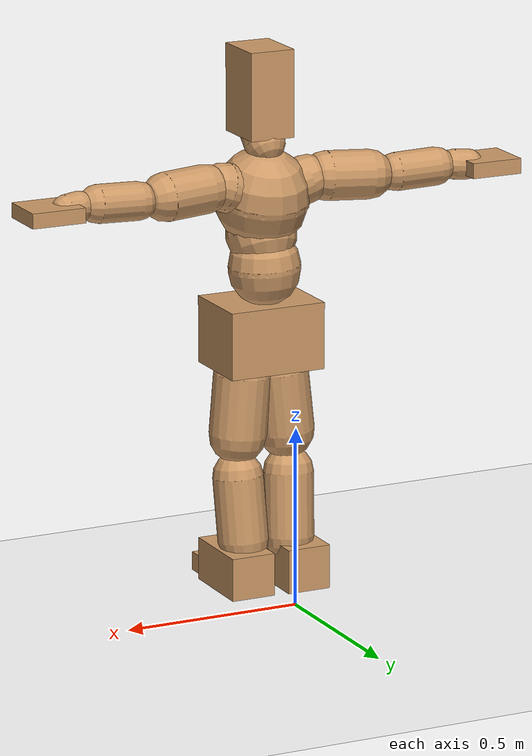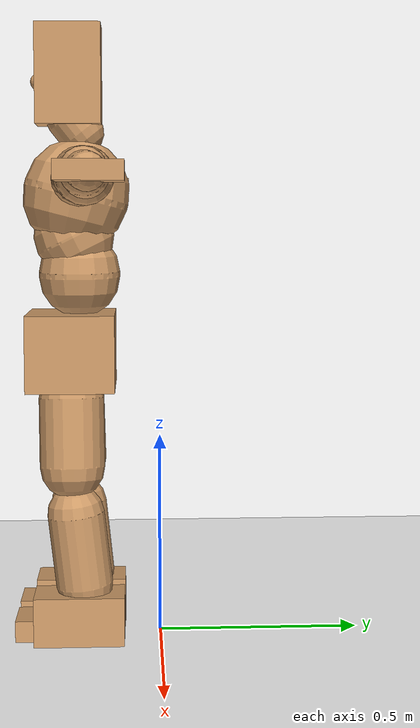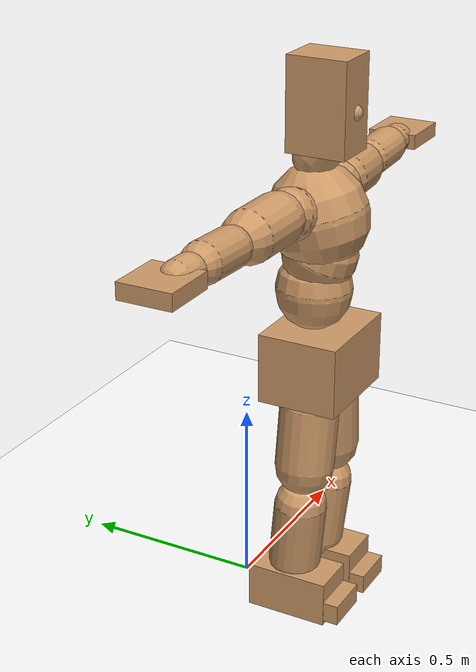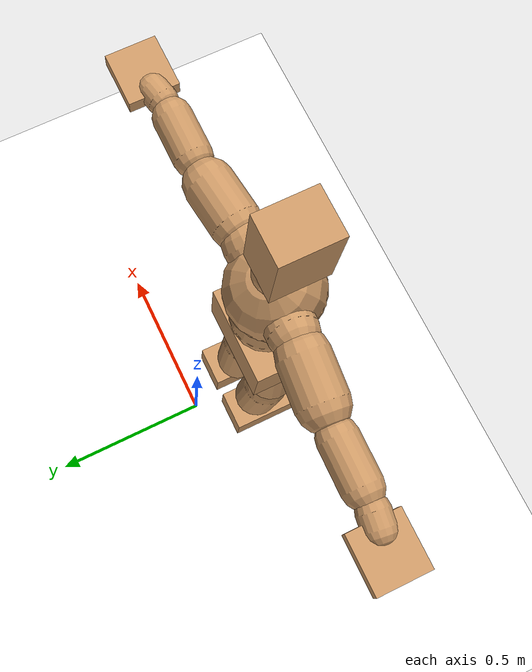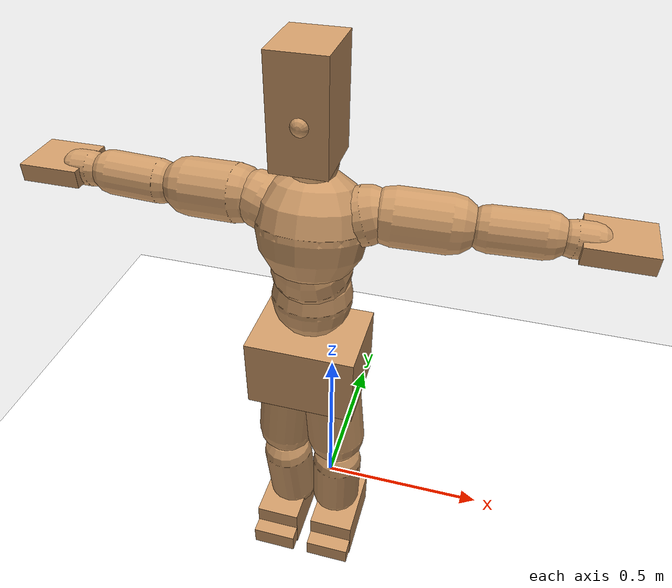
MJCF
<mujoco model="humanoid">
  <option integrator="implicitfast" />

  <visual>
    <global offwidth="1280" offheight="960" />
    <headlight active="1" ambient="0.34 0.34 0.34" diffuse="0.5 0.5 0.5" />
  </visual>

  <default>
    <joint damping="2" stiffness="2" armature="0.01" limited="true" solimplimit="0 .99 .01" />
    <geom condim="1" friction="0.7 0.005 0.0001" solimp=".99 .99 .003" solref="0.015 1" margin="0.001" rgba="0.8 0.6 .4 1" />
    <default class="smplcontact">
      <geom condim="3" friction="1. 0.005 0.0001" solref="0.015 1" solimp="0.98 0.98 0.001" priority="1" />
    </default>
    <default class="stiff_medium">
      <joint stiffness="10" />
    </default>
    <default class="stiff_medium_higher">
      <joint stiffness="50" />
    </default>
    <default class="stiff_high">
      <joint stiffness="100" />
    </default>
  </default>

  <asset>
    <texture type="skybox" builtin="gradient" rgb1="0.99 0.99 0.99" rgb2="0.608 0.828 0.892" width="100" />
    <texture builtin="flat" height="1278" mark="cross" markrgb="1 1 1" name="texgeom" random="0.01" rgb1="0.8 0.6 0.4" rgb2="0.8 0.6 0.4" type="cube" width="127" />
    <texture name="texplane" type="2d" builtin="checker" markrgb="1 1 1" rgb1="0.756 0.772 0.76" rgb2="0.6 0.6 0.6" width="100" height="100" />
    <material name="MatPlane" reflectance="0.5" texture="texplane" texrepeat="1 1" texuniform="true" />
    <material name="geom" texture="texgeom" texuniform="true" />
  </asset>

  <worldbody>
    <light name="tracking_light" pos="0 0 7" dir="0 0 -1" directional="true" cutoff="100" exponent="1" diffuse="1 1 1" specular="0.1 0.1 0.1" mode="trackcom" />
    <camera name="back" pos="0 3 2.4" xyaxes="-1 0 0 0 -1 2" mode="trackcom" />
    <camera name="side" pos="-3 0 2.4" xyaxes="0 -1 0 1 0 2" mode="trackcom" />
    <camera name="front_side" pos="-2.8 -2.8 0.8" xyaxes="0.5 -0.5 0 0.1 0.1 1" mode="trackcom" />
    <geom condim="3" name="floor" pos="0 0 0" rgba="1 1 1 1" size="100 100 .2" type="plane" material="MatPlane" />
    <body name="Pelvis" pos="-0.0018 -0.2233 0.728815" euler="90 0 0">
      <site name="Pelvis" size="0.01" />
      <freejoint name="Pelvis" />
      <geom type="box" pos="-0.0000 -0.0121 -0.0055" size="0.13897 0.09386 0.1079" quat="1.0000 0.0000 0.0000 0.0000" density="3165.830099" name="Pelvis" />
      <body name="L_Hip" pos="0.052125 -0.06855 -0.0051">
        <joint name="L_Hip_x" type="hinge" pos="0 0 0" axis="1 0 0" stiffness="11.858263488372094" range="-160.0 22.92" class="stiff_medium" damping="16.068092958494244" armature="0.009676650532478629"/>
        <joint name="L_Hip_y" type="hinge" pos="0 0 0" axis="0 1 0" stiffness="11.964359767441861" range="-70.0 70.0" class="stiff_medium" damping="15.435012586422062" armature="0.01991244146563692"/>
        <joint name="L_Hip_z" type="hinge" pos="0 0 0" axis="0 0 1" stiffness="11.93226011627907" range="-28.65 90.0" class="stiff_medium" damping="10.736151043294488" armature="0.00965994188034658"/>
        <geom type="capsule" density="2040.816327" fromto="0.005175 -0.05625 -0.000675 0.02055 -0.22515 -0.0027" size="0.07995" name="L_Hip" />
        <body name="L_Knee" pos="0.025725 -0.2814 -0.003375">
          <joint name="L_Knee_x" type="hinge" pos="0 0 0" axis="1 0 0" range="-5.16 171.89" damping="9.377427020673869" armature="0.010837409497361353" stiffness="2.535665279069767"/>
          <joint name="L_Knee_y" type="hinge" pos="0 0 0" axis="0 1 0" range="-4.58 6.88" damping="13.122235236560275" armature="0.022138456818400876" stiffness="2.4306269828349945"/>
          <joint name="L_Knee_z" type="hinge" pos="0 0 0" axis="0 0 1" range="-6.88 4.58" damping="9.385014701795315" armature="0.01074658799210563" stiffness="2.561234465116279"/>
          <geom type="capsule" density="1234.567901" fromto="-0.002025 -0.0597 -0.006525 -0.008175 -0.2388 -0.02625" size="0.07033" name="L_Knee" />
          <body name="L_Ankle" pos="-0.0102 -0.2985 -0.032775">
            <joint name="L_Ankle_x" type="hinge" pos="0 0 0" axis="1 0 0" range="-45.84 45.84" class="stiff_medium" damping="11.117577805797527" armature="0.02083658461335521" stiffness="16.4775"/>
            <joint name="L_Ankle_y" type="hinge" pos="0 0 0" axis="0 1 0" range="-74.48 22.92" class="stiff_medium" damping="5.639060394301202" armature="0.021442709506617735" stiffness="16.4775"/>
            <joint name="L_Ankle_z" type="hinge" pos="0 0 0" axis="0 0 1" range="-4.58 4.58" class="stiff_medium" damping="12.277381987072683" armature="0.025410763576003765" stiffness="16.4775"/>
            <geom type="box" pos="0.017475 -0.017925 0.01815" size="0.06279 0.06032 0.1105" quat="1.0000 0.0000 0.0000 0.0000" density="449.071558" name="L_Ankle" class="smplcontact" />
            <body name="L_Toe" pos="0.0198 -0.04185 0.089475">
              <joint name="L_Toe_x" type="hinge" pos="0 0 0" axis="1 0 0" range="-91.67 22.92" armature="0.0277115987131363" damping="4.273723752400024" stiffness="3.2955"/>
              <joint name="L_Toe_y" type="hinge" pos="0 0 0" axis="0 1 0" range="-4.58 4.58" armature="0.030493769146980272" damping="4.4831287339061205" stiffness="3.2955"/>
              <joint name="L_Toe_z" type="hinge" pos="0 0 0" axis="0 0 1" range="-4.58 4.58" armature="0.03611916801457241" damping="4.879153987978313" stiffness="3.2955"/>
              <geom type="box" pos="-0.00225 0.004125 0.0186" size="0.06214 0.026 0.06448" quat="1.0000 0.0000 0.0000 0.0000" density="423.206892" name="L_Toe" class="smplcontact" />
            </body>
          </body>
        </body>
      </body>
      <body name="R_Hip" pos="-0.050775 -0.067875 -0.003225">
        <joint name="R_Hip_x" type="hinge" pos="0 0 0" axis="1 0 0" stiffness="11.858263488372094" range="-160.0 22.92" class="stiff_medium" damping="16.068092958494244" armature="0.009676650532478629"/>
        <joint name="R_Hip_y" type="hinge" pos="0 0 0" axis="0 1 0" stiffness="11.964359767441861" range="-70.0 70.0" class="stiff_medium" damping="15.435012586422062" armature="0.01991244146563692"/>
        <joint name="R_Hip_z" type="hinge" pos="0 0 0" axis="0 0 1" stiffness="11.93226011627907" range="-90.0 28.65" class="stiff_medium" damping="10.736151043294488" armature="0.00965994188034658"/>
        <geom type="capsule" density="2040.816327" fromto="-0.005775 -0.057375 -0.00135 -0.02295 -0.229575 -0.005325" size="0.07878" name="R_Hip" />
        <body name="R_Knee" pos="-0.028725 -0.28695 -0.006675">
          <joint name="R_Knee_x" type="hinge" pos="0 0 0" axis="1 0 0" range="-5.16 171.89" damping="9.377427020673869" armature="0.010837409497361353" stiffness="2.535665279069767"/>
          <joint name="R_Knee_y" type="hinge" pos="0 0 0" axis="0 1 0" range="-6.88 4.58" damping="13.122235236560275" armature="0.022138456818400876" stiffness="2.4306269828349945"/>
          <joint name="R_Knee_z" type="hinge" pos="0 0 0" axis="0 0 1" range="-4.58 6.88" damping="9.385014701795315" armature="0.01074658799210563" stiffness="2.561234465116279"/>
          <geom type="capsule" density="1234.567901" fromto="0.0024 -0.059775 -0.006375 0.00945 -0.239025 -0.02535" size="0.07033" name="R_Knee" />
          <body name="R_Ankle" pos="0.01185 -0.2988 -0.031725">
            <joint name="R_Ankle_x" type="hinge" pos="0 0 0" axis="1 0 0" range="-45.84 45.84" class="stiff_medium" damping="11.117577805797527" armature="0.02083658461335521" stiffness="16.4775"/>
            <joint name="R_Ankle_y" type="hinge" pos="0 0 0" axis="0 1 0" range="-22.92 74.48" class="stiff_medium" damping="5.639060394301202" armature="0.021442709506617735" stiffness="16.4775"/>
            <joint name="R_Ankle_z" type="hinge" pos="0 0 0" axis="0 0 1" range="-4.58 4.58" class="stiff_medium" damping="12.277381987072683" armature="0.025410763576003765" stiffness="16.4775"/>
            <geom type="box" pos="-0.0159 -0.01305 0.0192" size="0.06279 0.06214 0.11245" quat="1.0000 0.0000 0.0000 0.0000" density="434.700981" name="R_Ankle" class="smplcontact" />
            <body name="R_Toe" pos="-0.01905 -0.036075 0.092475">
              <joint name="R_Toe_x" type="hinge" pos="0 0 0" axis="1 0 0" range="-91.67 22.92" armature="0.0277115987131363" damping="4.273723752400024" stiffness="3.2955"/>
              <joint name="R_Toe_y" type="hinge" pos="0 0 0" axis="0 1 0" range="-4.58 4.58" armature="0.030493769146980272" damping="4.4831287339061205" stiffness="3.2955"/>
              <joint name="R_Toe_z" type="hinge" pos="0 0 0" axis="0 0 1" range="-4.58 4.58" armature="0.03611916801457241" damping="4.879153987978313" stiffness="3.2955"/>
              <geom type="box" pos="0.00315 0.003375 0.017025" size="0.06227 0.02808 0.06409" quat="1.0000 0.0000 0.0000 0.0000" density="407.384095" name="R_Toe" class="smplcontact" />
            </body>
          </body>
        </body>
      </body>
      <body name="Torso" pos="-0.0025 0.109 -0.0267">
        <joint name="Torso_x" type="hinge" pos="0 0 0" axis="1 0 0" range="-25.78 57.3" class="stiff_medium" damping="24.077182940937746" armature="0.015427091630277667" stiffness="16.701088139534882"/>
        <joint name="Torso_y" type="hinge" pos="0 0 0" axis="0 1 0" range="-57.3 57.3" class="stiff_high" damping="28.181150474542985" armature="0.011938163823963122" stiffness="166.31059302325576"/>
        <joint name="Torso_z" type="hinge" pos="0 0 0" axis="0 0 1" range="-34.38 34.38" class="stiff_high" damping="31.169981713935183" armature="0.01398971678425612" stiffness="173.62177073170733"/>
        <geom type="capsule" density="2040.816327" fromto="0.0025 0.0608 0.0005 0.003 0.0743 0.0006" size="0.09997" name="Torso" />
        <body name="Spine" pos="0.0055 0.1352 0.0011">
          <joint name="Spine_x" type="hinge" pos="0 0 0" axis="1 0 0" stiffness="15.859604418604654" range="-25.78 57.3" class="stiff_medium" damping="22.480163250570996" armature="0.014161982478915513"/>
          <joint name="Spine_y" type="hinge" pos="0 0 0" axis="0 1 0" stiffness="16.1063919047619" range="-57.3 57.3" class="stiff_high" damping="11.020355689034874" armature="0.011781836388987514"/>
          <joint name="Spine_z" type="hinge" pos="0 0 0" axis="0 0 1" stiffness="31.235601395348837" range="-34.38 34.38" class="stiff_high" damping="16.751542242374388" armature="0.012477489847878743"/>
          <geom type="capsule" density="2040.816327" fromto="0.0007 0.0238 0.0114 0.0008 0.0291 0.014" size="0.09815" name="Spine" />
          <body name="Chest" pos="0.0015 0.0529 0.0254">
            <joint name="Chest_x" type="hinge" pos="0 0 0" axis="1 0 0" stiffness="14.40614119047619" range="-25.78 57.3" class="stiff_medium" damping="20.96059226256558" armature="0.013554294417098956"/>
            <joint name="Chest_y" type="hinge" pos="0 0 0" axis="0 1 0" stiffness="14.021498536585366" range="-57.3 57.3" class="stiff_high" damping="10.236021857533279" armature="0.011675836483627444"/>
            <joint name="Chest_z" type="hinge" pos="0 0 0" axis="0 0 1" stiffness="29.43207674418605" range="-34.38 34.38" class="stiff_high" damping="15.902606574192356" armature="0.011933922848285188"/>
            <geom type="capsule" density="2040.816327" fromto="-0.0009 0.0682 -0.0173 -0.001 0.0833 -0.0212" size="0.13026" name="Chest" />
            <body name="Neck" pos="-0.0028 0.2139 -0.0429">
              <joint name="Neck_x" type="hinge" pos="0 0 0" axis="1 0 0" range="-28.65 57.3" class="stiff_medium_higher" damping="12.068275332666797" armature="0.011999532387037562" stiffness="60.68706046511628"/>
              <joint name="Neck_y" type="hinge" pos="0 0 0" axis="0 1 0" range="-40.11 40.11" class="stiff_medium_higher" damping="12.564401524952082" armature="0.013108987956197206" stiffness="60.21219418604651"/>
              <joint name="Neck_z" type="hinge" pos="0 0 0" axis="0 0 1" range="-40.11 40.11" class="stiff_medium_higher" damping="11.90621541328846" armature="0.011964356151950873" stiffness="59.24178604651161"/>
              <geom type="capsule" density="1000" fromto="0.001 0.013 0.0103 0.0041 0.052 0.0411" size="0.05668" name="Neck" />
              <body name="Head" pos="0.0052 0.065 0.0513">
                <joint name="Head_x" type="hinge" pos="0 0 0" axis="1 0 0" range="-28.65 57.3" class="stiff_medium_higher" damping="2.3679344135453846" armature="0.01210908840698094" stiffness="57.88125000000001"/>
                <joint name="Head_y" type="hinge" pos="0 0 0" axis="0 1 0" range="-40.11 40.11" class="stiff_medium_higher" damping="2.425797531188864" armature="0.012708117184584793" stiffness="57.88125000000001"/>
                <joint name="Head_z" type="hinge" pos="0 0 0" axis="0 0 1" range="-40.11 40.11" class="stiff_medium_higher" damping="2.36503258144638" armature="0.012079427947960108" stiffness="57.88125000000001"/>
                <geom type="box" pos="-0.0042 0.0876 -0.0116" size="0.06363 0.12117 0.0798" quat="1.0000 0.0000 0.0000 0.0000" density="1018.069894" name="Head" />
                <geom type="capsule" name="nose" size="0.021 0.0105" pos="0 0.07 0.05" quat="1 0 0 0" mass="0" contype="0" conaffinity="0" />
              </body>
            </body>
            <body name="L_Thorax" pos="0.06304 0.09736 -0.02728">
              <joint name="L_Thorax_x" type="hinge" pos="0 0 0" axis="1 0 0" range="-10.89 4.58" class="stiff_medium_higher" damping="31.722986873389885" armature="0.01869047979990956" stiffness="67.30350872093025"/>
              <joint name="L_Thorax_y" type="hinge" pos="0 0 0" axis="0 1 0" range="-28.65 17.19" class="stiff_medium_higher" damping="24.382620038397633" armature="0.011190370272704402" stiffness="66.40890174418605"/>
              <joint name="L_Thorax_z" type="hinge" pos="0 0 0" axis="0 0 1" range="-31.51 40.11" class="stiff_medium_higher" damping="24.382615090488674" armature="0.0111834154133925" stiffness="66.4501738372093"/>
              <geom type="capsule" density="1000" fromto="0.01456 0.00488 -0.00144 0.05824 0.01952 -0.00568" size="0.06773" name="L_Thorax" />
              <body name="L_Shoulder" pos="0.0728 0.0244 -0.00712">
                <joint name="L_Shoulder_x" type="hinge" pos="0 0 0" axis="1 0 0" range="-97.4 97.4" class="stiff_medium" damping="10.218311024504594" armature="0.02137793338227807" stiffness="13.567193372093024"/>
                <joint name="L_Shoulder_y" type="hinge" pos="0 0 0" axis="0 1 0" range="-108.86 80.21" class="stiff_medium" damping="7.3992450494271385" armature="0.011366876866356573" stiffness="13.379231395348835"/>
                <joint name="L_Shoulder_z" type="hinge" pos="0 0 0" axis="0 0 1" range="-97.4 85.94" class="stiff_medium" damping="7.391720853808945" armature="0.011356963675091305" stiffness="13.363689534883726"/>
                <geom type="capsule" density="1000" fromto="0.04152 -0.00208 -0.0044 0.16616 -0.00816 -0.0176" size="0.06721" name="L_Shoulder" />
                <body name="L_Elbow" pos="0.20768 -0.01024 -0.022">
                  <joint name="L_Elbow_x" type="hinge" pos="0 0 0" axis="1 0 0" range="-17.19 4.58" damping="9.599235461421163" armature="0.026206277924719714" stiffness="2.8129235813953493"/>
                  <joint name="L_Elbow_y" type="hinge" pos="0 0 0" axis="0 1 0" range="-180.0 17.19" damping="6.564016926033026" armature="0.012251007778315398" stiffness="2.813568906976744"/>
                  <joint name="L_Elbow_z" type="hinge" pos="0 0 0" axis="0 0 1" range="-100.84 4.58" damping="6.551577023801565" armature="0.01219897404795812" stiffness="2.814870255813953"/>
                  <geom type="capsule" density="1000" fromto="0.03984 0.00144 -0.00016 0.15952 0.00576 -0.00072" size="0.05265" name="L_Elbow" />
                  <body name="L_Wrist" pos="0.19936 0.0072 -0.00096">
                    <joint name="L_Wrist_x" type="hinge" pos="0 0 0" axis="1 0 0" range="-180.0 22.92" armature="0.028842167844616663" damping="4.346077065496655" stiffness="3.27443934883721"/>
                    <joint name="L_Wrist_y" type="hinge" pos="0 0 0" axis="0 1 0" range="-17.19 17.19" armature="0.01612095498585496" damping="3.2281899953298483" stiffness="3.2321939534883724"/>
                    <joint name="L_Wrist_z" type="hinge" pos="0 0 0" axis="0 0 1" range="-22.92 22.92" armature="0.015379911392616803" damping="3.161088546720517" stiffness="3.2485495348837206"/>
                    <geom type="capsule" density="1000" fromto="0.01344 -0.00128 -0.0024 0.05376 -0.0052 -0.0096" size="0.04134" name="L_Wrist" class="smplcontact" />
                    <body name="L_Hand" pos="0.0672 -0.00656 -0.01192">
                      <joint name="L_Hand_x" type="hinge" pos="0 0 0" axis="1 0 0" range="-17.19 17.19" armature="0.036124294026030505" damping="5.03952613566598" stiffness="3.5151999999999997"/>
                      <joint name="L_Hand_y" type="hinge" pos="0 0 0" axis="0 1 0" range="-51.57 51.57" armature="0.024975139299557237" damping="4.190289003536716" stiffness="3.5151999999999997"/>
                      <joint name="L_Hand_z" type="hinge" pos="0 0 0" axis="0 0 1" range="-91.67 91.67" armature="0.02200317977540781" damping="3.933079646956403" stiffness="3.5151999999999997"/>
                      <geom type="box" pos="0.03944 0.0008 -0.00464" size="0.07605 0.02054 0.06994" quat="1.0000 0.0000 0.0000 0.0000" density="400.552564" name="L_Hand" class="smplcontact" />
                    </body>
                  </body>
                </body>
              </body>
            </body>
            <body name="R_Thorax" pos="-0.06544 0.09504 -0.03088">
              <joint name="R_Thorax_x" type="hinge" pos="0 0 0" axis="1 0 0" range="-10.89 4.58" class="stiff_medium_higher" damping="31.722986873389885" armature="0.01869047979990956" stiffness="67.30350872093025"/>
              <joint name="R_Thorax_y" type="hinge" pos="0 0 0" axis="0 1 0" range="-17.19 28.65" class="stiff_medium_higher" damping="24.382620038397633" armature="0.011190370272704402" stiffness="66.40890174418605"/>
              <joint name="R_Thorax_z" type="hinge" pos="0 0 0" axis="0 0 1" range="-40.11 31.51" class="stiff_medium_higher" damping="24.382615090488674" armature="0.0111834154133925" stiffness="66.4501738372093"/>
              <geom type="capsule" density="1000" fromto="-0.01536 0.0052 -0.00144 -0.06144 0.0208 -0.00584" size="0.06643" name="R_Thorax" />
              <body name="R_Shoulder" pos="-0.0768 0.02608 -0.00728">
                <joint name="R_Shoulder_x" type="hinge" pos="0 0 0" axis="1 0 0" range="-97.4 97.4" class="stiff_medium" damping="10.218311024504594" armature="0.02137793338227807" stiffness="13.567193372093024"/>
                <joint name="R_Shoulder_y" type="hinge" pos="0 0 0" axis="0 1 0" range="-80.21 108.86" class="stiff_medium" damping="7.3992450494271385" armature="0.011366876866356573" stiffness="13.379231395348835"/>
                <joint name="R_Shoulder_z" type="hinge" pos="0 0 0" axis="0 0 1" range="-85.94 97.4" class="stiff_medium" damping="7.391720853808945" armature="0.011356963675091305" stiffness="13.363689534883726"/>
                <geom type="capsule" density="1000" fromto="-0.04056 -0.00216 -0.00344 -0.1624 -0.00856 -0.01368" size="0.06903" name="R_Shoulder" />
                <body name="R_Elbow" pos="-0.20296 -0.01064 -0.01712">
                  <joint name="R_Elbow_x" type="hinge" pos="0 0 0" axis="1 0 0" range="-17.19 4.58" damping="9.599235461421163" armature="0.026206277924719714" stiffness="2.8129235813953493"/>
                  <joint name="R_Elbow_y" type="hinge" pos="0 0 0" axis="0 1 0" range="-17.19 180.0" damping="6.564016926033026" armature="0.012251007778315398" stiffness="2.813568906976744"/>
                  <joint name="R_Elbow_z" type="hinge" pos="0 0 0" axis="0 0 1" range="-4.58 100.84" damping="6.551577023801565" armature="0.01219897404795812" stiffness="2.814870255813953"/>
                  <geom type="capsule" density="1000" fromto="-0.04088 0.00128 -0.00088 -0.16336 0.00496 -0.00352" size="0.05304" name="R_Elbow" />
                  <body name="R_Wrist" pos="-0.20424 0.00624 -0.00448">
                    <joint name="R_Wrist_x" type="hinge" pos="0 0 0" axis="1 0 0" range="-180.0 22.92" armature="0.028842167844616663" damping="4.346077065496655" stiffness="3.27443934883721"/>
                    <joint name="R_Wrist_y" type="hinge" pos="0 0 0" axis="0 1 0" range="-17.19 17.19" armature="0.01612095498585496" damping="3.2281899953298483" stiffness="3.2321939534883724"/>
                    <joint name="R_Wrist_z" type="hinge" pos="0 0 0" axis="0 0 1" range="-22.92 22.92" armature="0.015379911392616803" damping="3.161088546720517" stiffness="3.2485495348837206"/>
                    <geom type="capsule" density="1000" fromto="-0.01352 -0.00096 -0.00168 -0.05416 -0.00392 -0.00664" size="0.04238" name="R_Wrist" class="smplcontact" />
                    <body name="R_Hand" pos="-0.06768 -0.00488 -0.00824">
                      <joint name="R_Hand_x" type="hinge" pos="0 0 0" axis="1 0 0" range="-17.19 17.19" armature="0.036124294026030505" damping="5.03952613566598" stiffness="3.5151999999999997"/>
                      <joint name="R_Hand_y" type="hinge" pos="0 0 0" axis="0 1 0" range="-51.57 51.57" armature="0.024975139299557237" damping="4.190289003536716" stiffness="3.5151999999999997"/>
                      <joint name="R_Hand_z" type="hinge" pos="0 0 0" axis="0 0 1" range="-91.67 91.67" armature="0.02200317977540781" damping="3.933079646956403" stiffness="3.5151999999999997"/>
                      <geom type="box" pos="-0.03696 -0.00072 -0.00632" size="0.07397 0.02132 0.07098" quat="1.0000 0.0000 0.0000 0.0000" density="403.679611" name="R_Hand" class="smplcontact" />
                    </body>
                  </body>
                </body>
              </body>
            </body>
          </body>
        </body>
      </body>
    </body>
  </worldbody>
  <actuator>
    <general name="L_Hip_x" joint="L_Hip_x" biastype="affine" gainprm="340.7235608196892" biasprm="-255.3377745307402 -213.44874279069768 -2.1424123944658993" ctrllimited="true" ctrlrange="-1 1" forcerange="-426.89748558139536 426.89748558139536" />
    <general name="L_Hip_y" joint="L_Hip_y" biastype="affine" gainprm="263.11001325210447" biasprm="0.0 -215.3584758139535 -3.087002517284412" ctrllimited="true" ctrlrange="-1 1" forcerange="-430.716951627907 430.716951627907" />
    <general name="L_Hip_z" joint="L_Hip_z" biastype="affine" gainprm="222.38747903341223" biasprm="114.98922746481112 -214.78068209302324 -2.1472302086588977" ctrllimited="true" ctrlrange="-1 1" forcerange="-429.5613641860465 429.5613641860465" />
    <general name="L_Knee_x" joint="L_Knee_x" biastype="affine" gainprm="352.5962883541156" biasprm="332.04393762937974 -228.20987511627905 -2.344356755168467" ctrllimited="true" ctrlrange="-1 1" forcerange="-456.4197502325581 456.4197502325581" />
    <general name="L_Knee_y" joint="L_Knee_y" biastype="affine" gainprm="21.87725423583427" biasprm="4.390722926912637 -218.7564284551495 -3.280558809140069" ctrllimited="true" ctrlrange="-1 1" forcerange="-437.512856910299 437.512856910299" />
    <general name="L_Knee_z" joint="L_Knee_z" biastype="affine" gainprm="23.052808162927267" biasprm="-4.6266543433449145 -230.51110186046512 -2.346253675448829" ctrllimited="true" ctrlrange="-1 1" forcerange="-461.02220372093024 461.02220372093024" />
    <general name="L_Ankle_x" joint="L_Ankle_x" biastype="affine" gainprm="118.6467390403132" biasprm="0.0 -148.2975 -3.7058592685991756" ctrllimited="true" ctrlrange="-1 1" forcerange="-296.595 296.595" />
    <general name="L_Ankle_y" joint="L_Ankle_y" biastype="affine" gainprm="126.04921883209539" biasprm="-66.72584931193879 -148.2975 -3.7593735962008017" ctrllimited="true" ctrlrange="-1 1" forcerange="-296.595 296.595" />
    <general name="L_Ankle_z" joint="L_Ankle_z" biastype="affine" gainprm="11.854320785441411" biasprm="0.0 -148.2975 -4.092460662357561" ctrllimited="true" ctrlrange="-1 1" forcerange="-296.595 296.595" />
    <general name="L_Toe_x" joint="L_Toe_x" biastype="affine" gainprm="118.63638592172326" biasprm="-71.17769030559799 -118.638 -1.7094895009600095" ctrllimited="true" ctrlrange="-1 1" forcerange="-237.276 237.276" />
    <general name="L_Toe_y" joint="L_Toe_y" biastype="affine" gainprm="9.48345662835313" biasprm="0.0 -118.638 -1.7932514935624484" ctrllimited="true" ctrlrange="-1 1" forcerange="-237.276 237.276" />
    <general name="L_Toe_z" joint="L_Toe_z" biastype="affine" gainprm="9.48345662835313" biasprm="0.0 -118.638 -1.9516615951913252" ctrllimited="true" ctrlrange="-1 1" forcerange="-237.276 237.276" />
    <general name="R_Hip_x" joint="R_Hip_x" biastype="affine" gainprm="340.7235608196892" biasprm="-255.3377745307402 -213.44874279069768 -2.1424123944658993" ctrllimited="true" ctrlrange="-1 1" forcerange="-426.89748558139536 426.89748558139536" />
    <general name="R_Hip_y" joint="R_Hip_y" biastype="affine" gainprm="263.11001325210447" biasprm="0.0 -215.3584758139535 -3.087002517284412" ctrllimited="true" ctrlrange="-1 1" forcerange="-430.716951627907 430.716951627907" />
    <general name="R_Hip_z" joint="R_Hip_z" biastype="affine" gainprm="222.38747903341223" biasprm="-114.98922746481112 -214.78068209302324 -2.1472302086588977" ctrllimited="true" ctrlrange="-1 1" forcerange="-429.5613641860465 429.5613641860465" />
    <general name="R_Knee_x" joint="R_Knee_x" biastype="affine" gainprm="352.5962883541156" biasprm="332.04393762937974 -228.20987511627905 -2.344356755168467" ctrllimited="true" ctrlrange="-1 1" forcerange="-456.4197502325581 456.4197502325581" />
    <general name="R_Knee_y" joint="R_Knee_y" biastype="affine" gainprm="21.87725423583427" biasprm="-4.390722926912637 -218.7564284551495 -3.280558809140069" ctrllimited="true" ctrlrange="-1 1" forcerange="-437.512856910299 437.512856910299" />
    <general name="R_Knee_z" joint="R_Knee_z" biastype="affine" gainprm="23.052808162927267" biasprm="4.6266543433449145 -230.51110186046512 -2.346253675448829" ctrllimited="true" ctrlrange="-1 1" forcerange="-461.02220372093024 461.02220372093024" />
    <general name="R_Ankle_x" joint="R_Ankle_x" biastype="affine" gainprm="118.6467390403132" biasprm="0.0 -148.2975 -3.7058592685991756" ctrllimited="true" ctrlrange="-1 1" forcerange="-296.595 296.595" />
    <general name="R_Ankle_y" joint="R_Ankle_y" biastype="affine" gainprm="126.04921883209539" biasprm="66.72584931193879 -148.2975 -3.7593735962008017" ctrllimited="true" ctrlrange="-1 1" forcerange="-296.595 296.595" />
    <general name="R_Ankle_z" joint="R_Ankle_z" biastype="affine" gainprm="11.854320785441411" biasprm="0.0 -148.2975 -4.092460662357561" ctrllimited="true" ctrlrange="-1 1" forcerange="-296.595 296.595" />
    <general name="R_Toe_x" joint="R_Toe_x" biastype="affine" gainprm="118.63638592172326" biasprm="-71.17769030559799 -118.638 -1.7094895009600095" ctrllimited="true" ctrlrange="-1 1" forcerange="-237.276 237.276" />
    <general name="R_Toe_y" joint="R_Toe_y" biastype="affine" gainprm="9.48345662835313" biasprm="0.0 -118.638 -1.7932514935624484" ctrllimited="true" ctrlrange="-1 1" forcerange="-237.276 237.276" />
    <general name="R_Toe_z" joint="R_Toe_z" biastype="affine" gainprm="9.48345662835313" biasprm="0.0 -118.638 -1.9516615951913252" ctrllimited="true" ctrlrange="-1 1" forcerange="-237.276 237.276" />
    <general name="Torso_x" joint="Torso_x" biastype="affine" gainprm="290.60285021148786" biasprm="110.25279054725681 -400.8261153488372 -6.420582117583399" ctrllimited="true" ctrlrange="-1 1" forcerange="-601.2391730232558 601.2391730232558" />
    <general name="Torso_y" joint="Torso_y" biastype="affine" gainprm="399.174824863601" biasprm="0.0 -399.14542325581385 -5.636230094908597" ctrllimited="true" ctrlrange="-1 1" forcerange="-598.7181348837207 598.7181348837207" />
    <general name="Torso_z" joint="Torso_z" biastype="affine" gainprm="250.03376633253788" biasprm="0.0 -416.69224975609757 -6.233996342787036" ctrllimited="true" ctrlrange="-1 1" forcerange="-625.0383746341464 625.0383746341464" />
    <general name="Spine_x" joint="Spine_x" biastype="affine" gainprm="275.96083613038" biasprm="104.69770768933049 -380.6305060465117 -5.994710200152266" ctrllimited="true" ctrlrange="-1 1" forcerange="-570.9457590697675 570.9457590697675" />
    <general name="Spine_y" joint="Spine_y" biastype="affine" gainprm="386.58187977652307" biasprm="0.0 -386.55340571428565 -5.510177844517437" ctrllimited="true" ctrlrange="-1 1" forcerange="-579.8301085714285 579.8301085714285" />
    <general name="Spine_z" joint="Spine_z" biastype="affine" gainprm="224.91289622340742" biasprm="0.0 -374.82721674418605 -5.583847414124796" ctrllimited="true" ctrlrange="-1 1" forcerange="-562.240825116279 562.240825116279" />
    <general name="Chest_x" joint="Chest_x" biastype="affine" gainprm="250.67023510829088" biasprm="95.10262169731978 -345.74738857142853 -5.589491270017488" ctrllimited="true" ctrlrange="-1 1" forcerange="-518.6210828571428 518.6210828571428" />
    <general name="Chest_y" joint="Chest_y" biastype="affine" gainprm="336.5407531127046" biasprm="0.0 -336.5159648780488 -5.1180109287666395" ctrllimited="true" ctrlrange="-1 1" forcerange="-504.7739473170732 504.7739473170732" />
    <general name="Chest_z" joint="Chest_z" biastype="affine" gainprm="211.92656221404414" biasprm="0.0 -353.1849209302326 -5.300868858064119" ctrllimited="true" ctrlrange="-1 1" forcerange="-529.7773813953488 529.7773813953488" />
    <general name="Neck_x" joint="Neck_x" biastype="affine" gainprm="32.773426609596534" biasprm="10.924475536532176 -43.69468353488372 -0.9654620266133439" ctrllimited="true" ctrlrange="-1 1" forcerange="-87.38936706976745 87.38936706976745" />
    <general name="Neck_y" joint="Neck_y" biastype="affine" gainprm="30.34918126806594" biasprm="0.0 -43.35277981395349 -1.0051521219961665" ctrllimited="true" ctrlrange="-1 1" forcerange="-86.70555962790698 86.70555962790698" />
    <general name="Neck_z" joint="Neck_z" biastype="affine" gainprm="29.860059539006343" biasprm="0.0 -42.65408595348836 -0.952497233063077" ctrllimited="true" ctrlrange="-1 1" forcerange="-85.30817190697672 85.30817190697672" />
    <general name="Head_x" joint="Head_x" biastype="affine" gainprm="20.838784900856098" biasprm="6.9462616336186995 -27.783 -0.9471737654181539" ctrllimited="true" ctrlrange="-1 1" forcerange="-55.566 55.566" />
    <general name="Head_y" joint="Head_y" biastype="affine" gainprm="19.44953257413236" biasprm="0.0 -27.783 -0.9703190124755458" ctrllimited="true" ctrlrange="-1 1" forcerange="-55.566 55.566" />
    <general name="Head_z" joint="Head_z" biastype="affine" gainprm="19.44953257413236" biasprm="0.0 -27.783 -0.9460130325785521" ctrllimited="true" ctrlrange="-1 1" forcerange="-55.566 55.566" />
    <general name="L_Thorax_x" joint="L_Thorax_x" biastype="affine" gainprm="21.806533509332375" biasprm="-8.894584773360526 -161.52842093023258 -2.537838949871191" ctrllimited="true" ctrlrange="-1 1" forcerange="-323.05684186046517 323.05684186046517" />
    <general name="L_Thorax_y" joint="L_Thorax_y" biastype="affine" gainprm="63.757241775724395" biasprm="-15.939310443931099 -159.38136418604654 -1.9506096030718105" ctrllimited="true" ctrlrange="-1 1" forcerange="-318.7627283720931 318.7627283720931" />
    <general name="L_Thorax_z" joint="L_Thorax_z" biastype="affine" gainprm="99.67564432841215" biasprm="11.968871002853174 -159.48041720930232 -1.950609207239094" ctrllimited="true" ctrlrange="-1 1" forcerange="-318.96083441860463 318.96083441860463" />
    <general name="L_Shoulder_x" joint="L_Shoulder_x" biastype="affine" gainprm="110.70508681835199" biasprm="0.0 -65.12252818604652 -2.724882939867892" ctrllimited="true" ctrlrange="-1 1" forcerange="-130.24505637209305 130.24505637209305" />
    <general name="L_Shoulder_y" joint="L_Shoulder_y" biastype="affine" gainprm="105.96010951240216" biasprm="-16.056260313800824 -64.22031069767442 -1.9731320131805703" ctrllimited="true" ctrlrange="-1 1" forcerange="-128.44062139534884 128.44062139534884" />
    <general name="L_Shoulder_z" joint="L_Shoulder_z" biastype="affine" gainprm="102.62950018925503" biasprm="-6.415043482976248 -64.14570976744187 -1.9711255610157186" ctrllimited="true" ctrlrange="-1 1" forcerange="-128.29141953488374 128.29141953488374" />
    <general name="L_Elbow_x" joint="L_Elbow_x" biastype="affine" gainprm="19.238279747182776" biasprm="-11.143532733669035 -101.26524893023257 -1.535877673827386" ctrllimited="true" ctrlrange="-1 1" forcerange="-202.53049786046515 202.53049786046515" />
    <general name="L_Elbow_y" joint="L_Elbow_y" biastype="affine" gainprm="174.29796460874002" biasprm="-143.9091820982249 -101.28848065116279 -1.0502427081652843" ctrllimited="true" ctrlrange="-1 1" forcerange="-202.57696130232557 202.57696130232557" />
    <general name="L_Elbow_z" joint="L_Elbow_z" biastype="affine" gainprm="93.22475840306402" biasprm="-85.12440944677427 -101.33532920930232 -1.0482523238082504" ctrllimited="true" ctrlrange="-1 1" forcerange="-202.67065841860463 202.67065841860463" />
    <general name="L_Wrist_x" joint="L_Wrist_x" biastype="affine" gainprm="34.79048046711712" biasprm="-26.931247150476825 -19.64663609302326 -1.7384308261986623" ctrllimited="true" ctrlrange="-1 1" forcerange="-39.29327218604652 39.29327218604652" />
    <general name="L_Wrist_y" joint="L_Wrist_y" biastype="affine" gainprm="5.81837767451393" biasprm="0.0 -19.393163720930232 -1.2912759981319395" ctrllimited="true" ctrlrange="-1 1" forcerange="-38.786327441860465 38.786327441860465" />
    <general name="L_Wrist_z" joint="L_Wrist_z" biastype="affine" gainprm="7.797093186160513" biasprm="0.0 -19.491297209302324 -1.264435418688207" ctrllimited="true" ctrlrange="-1 1" forcerange="-38.98259441860465 38.98259441860465" />
    <general name="L_Hand_x" joint="L_Hand_x" biastype="affine" gainprm="6.327826082150037" biasprm="0.0 -21.091199999999997 -2.015810454266392" ctrllimited="true" ctrlrange="-1 1" forcerange="-42.182399999999994 42.182399999999994" />
    <general name="L_Hand_y" joint="L_Hand_y" biastype="affine" gainprm="18.983478246450105" biasprm="0.0 -21.091199999999997 -1.6761156014146863" ctrllimited="true" ctrlrange="-1 1" forcerange="-42.182399999999994 42.182399999999994" />
    <general name="L_Hand_z" joint="L_Hand_z" biastype="affine" gainprm="33.74472466263489" biasprm="0.0 -21.091199999999997 -1.5732318587825613" ctrllimited="true" ctrlrange="-1 1" forcerange="-42.182399999999994 42.182399999999994" />
    <general name="R_Thorax_x" joint="R_Thorax_x" biastype="affine" gainprm="21.806533509332375" biasprm="-8.894584773360526 -161.52842093023258 -2.537838949871191" ctrllimited="true" ctrlrange="-1 1" forcerange="-323.05684186046517 323.05684186046517" />
    <general name="R_Thorax_y" joint="R_Thorax_y" biastype="affine" gainprm="63.757241775724395" biasprm="15.93931044393109 -159.38136418604654 -1.9506096030718105" ctrllimited="true" ctrlrange="-1 1" forcerange="-318.7627283720931 318.7627283720931" />
    <general name="R_Thorax_z" joint="R_Thorax_z" biastype="affine" gainprm="99.67564432841215" biasprm="-11.968871002853174 -159.48041720930232 -1.950609207239094" ctrllimited="true" ctrlrange="-1 1" forcerange="-318.96083441860463 318.96083441860463" />
    <general name="R_Shoulder_x" joint="R_Shoulder_x" biastype="affine" gainprm="110.70508681835199" biasprm="0.0 -65.12252818604652 -2.724882939867892" ctrllimited="true" ctrlrange="-1 1" forcerange="-130.24505637209305 130.24505637209305" />
    <general name="R_Shoulder_y" joint="R_Shoulder_y" biastype="affine" gainprm="105.96010951240216" biasprm="16.056260313800824 -64.22031069767442 -1.9731320131805703" ctrllimited="true" ctrlrange="-1 1" forcerange="-128.44062139534884 128.44062139534884" />
    <general name="R_Shoulder_z" joint="R_Shoulder_z" biastype="affine" gainprm="102.62950018925503" biasprm="6.415043482976234 -64.14570976744187 -1.9711255610157186" ctrllimited="true" ctrlrange="-1 1" forcerange="-128.29141953488374 128.29141953488374" />
    <general name="R_Elbow_x" joint="R_Elbow_x" biastype="affine" gainprm="19.238279747182776" biasprm="-11.143532733669035 -101.26524893023257 -1.535877673827386" ctrllimited="true" ctrlrange="-1 1" forcerange="-202.53049786046515 202.53049786046515" />
    <general name="R_Elbow_y" joint="R_Elbow_y" biastype="affine" gainprm="174.29796460874002" biasprm="143.9091820982249 -101.28848065116279 -1.0502427081652843" ctrllimited="true" ctrlrange="-1 1" forcerange="-202.57696130232557 202.57696130232557" />
    <general name="R_Elbow_z" joint="R_Elbow_z" biastype="affine" gainprm="93.22475840306402" biasprm="85.12440944677427 -101.33532920930232 -1.0482523238082504" ctrllimited="true" ctrlrange="-1 1" forcerange="-202.67065841860463 202.67065841860463" />
    <general name="R_Wrist_x" joint="R_Wrist_x" biastype="affine" gainprm="34.79048046711712" biasprm="-26.931247150476825 -19.64663609302326 -1.7384308261986623" ctrllimited="true" ctrlrange="-1 1" forcerange="-39.29327218604652 39.29327218604652" />
    <general name="R_Wrist_y" joint="R_Wrist_y" biastype="affine" gainprm="5.81837767451393" biasprm="0.0 -19.393163720930232 -1.2912759981319395" ctrllimited="true" ctrlrange="-1 1" forcerange="-38.786327441860465 38.786327441860465" />
    <general name="R_Wrist_z" joint="R_Wrist_z" biastype="affine" gainprm="7.797093186160513" biasprm="0.0 -19.491297209302324 -1.264435418688207" ctrllimited="true" ctrlrange="-1 1" forcerange="-38.98259441860465 38.98259441860465" />
    <general name="R_Hand_x" joint="R_Hand_x" biastype="affine" gainprm="6.327826082150037" biasprm="0.0 -21.091199999999997 -2.015810454266392" ctrllimited="true" ctrlrange="-1 1" forcerange="-42.182399999999994 42.182399999999994" />
    <general name="R_Hand_y" joint="R_Hand_y" biastype="affine" gainprm="18.983478246450105" biasprm="0.0 -21.091199999999997 -1.6761156014146863" ctrllimited="true" ctrlrange="-1 1" forcerange="-42.182399999999994 42.182399999999994" />
    <general name="R_Hand_z" joint="R_Hand_z" biastype="affine" gainprm="33.74472466263489" biasprm="0.0 -21.091199999999997 -1.5732318587825613" ctrllimited="true" ctrlrange="-1 1" forcerange="-42.182399999999994 42.182399999999994" />
  </actuator>
  <contact>
    <exclude body1="Torso" body2="Chest" />
    <exclude body1="Head" body2="Chest" />
    <exclude body1="R_Knee" body2="R_Toe" />
    <exclude body1="R_Knee" body2="L_Ankle" />
    <exclude body1="R_Knee" body2="L_Toe" />
    <exclude body1="L_Knee" body2="L_Toe" />
    <exclude body1="L_Knee" body2="R_Ankle" />
    <exclude body1="L_Knee" body2="R_Toe" />
    <exclude body1="L_Shoulder" body2="Chest" />
    <exclude body1="R_Shoulder" body2="Chest" />
  </contact>
  <sensor>
    <framelinvel name="sensor_Pelvis_framelinvel" objtype="xbody" objname="Pelvis" />
    <framelinvel name="sensor_L_Hip_framelinvel" objtype="xbody" objname="L_Hip" />
    <framelinvel name="sensor_L_Knee_framelinvel" objtype="xbody" objname="L_Knee" />
    <framelinvel name="sensor_L_Ankle_framelinvel" objtype="xbody" objname="L_Ankle" />
    <framelinvel name="sensor_L_Toe_framelinvel" objtype="xbody" objname="L_Toe" />
    <framelinvel name="sensor_R_Hip_framelinvel" objtype="xbody" objname="R_Hip" />
    <framelinvel name="sensor_R_Knee_framelinvel" objtype="xbody" objname="R_Knee" />
    <framelinvel name="sensor_R_Ankle_framelinvel" objtype="xbody" objname="R_Ankle" />
    <framelinvel name="sensor_R_Toe_framelinvel" objtype="xbody" objname="R_Toe" />
    <framelinvel name="sensor_Torso_framelinvel" objtype="xbody" objname="Torso" />
    <framelinvel name="sensor_Spine_framelinvel" objtype="xbody" objname="Spine" />
    <framelinvel name="sensor_Chest_framelinvel" objtype="xbody" objname="Chest" />
    <framelinvel name="sensor_Neck_framelinvel" objtype="xbody" objname="Neck" />
    <framelinvel name="sensor_Head_framelinvel" objtype="xbody" objname="Head" />
    <framelinvel name="sensor_L_Thorax_framelinvel" objtype="xbody" objname="L_Thorax" />
    <framelinvel name="sensor_L_Shoulder_framelinvel" objtype="xbody" objname="L_Shoulder" />
    <framelinvel name="sensor_L_Elbow_framelinvel" objtype="xbody" objname="L_Elbow" />
    <framelinvel name="sensor_L_Wrist_framelinvel" objtype="xbody" objname="L_Wrist" />
    <framelinvel name="sensor_L_Hand_framelinvel" objtype="xbody" objname="L_Hand" />
    <framelinvel name="sensor_R_Thorax_framelinvel" objtype="xbody" objname="R_Thorax" />
    <framelinvel name="sensor_R_Shoulder_framelinvel" objtype="xbody" objname="R_Shoulder" />
    <framelinvel name="sensor_R_Elbow_framelinvel" objtype="xbody" objname="R_Elbow" />
    <framelinvel name="sensor_R_Wrist_framelinvel" objtype="xbody" objname="R_Wrist" />
    <framelinvel name="sensor_R_Hand_framelinvel" objtype="xbody" objname="R_Hand" />
    <frameangvel name="sensor_Pelvis_frameangvel" objtype="xbody" objname="Pelvis" />
    <frameangvel name="sensor_L_Hip_frameangvel" objtype="xbody" objname="L_Hip" />
    <frameangvel name="sensor_L_Knee_frameangvel" objtype="xbody" objname="L_Knee" />
    <frameangvel name="sensor_L_Ankle_frameangvel" objtype="xbody" objname="L_Ankle" />
    <frameangvel name="sensor_L_Toe_frameangvel" objtype="xbody" objname="L_Toe" />
    <frameangvel name="sensor_R_Hip_frameangvel" objtype="xbody" objname="R_Hip" />
    <frameangvel name="sensor_R_Knee_frameangvel" objtype="xbody" objname="R_Knee" />
    <frameangvel name="sensor_R_Ankle_frameangvel" objtype="xbody" objname="R_Ankle" />
    <frameangvel name="sensor_R_Toe_frameangvel" objtype="xbody" objname="R_Toe" />
    <frameangvel name="sensor_Torso_frameangvel" objtype="xbody" objname="Torso" />
    <frameangvel name="sensor_Spine_frameangvel" objtype="xbody" objname="Spine" />
    <frameangvel name="sensor_Chest_frameangvel" objtype="xbody" objname="Chest" />
    <frameangvel name="sensor_Neck_frameangvel" objtype="xbody" objname="Neck" />
    <frameangvel name="sensor_Head_frameangvel" objtype="xbody" objname="Head" />
    <frameangvel name="sensor_L_Thorax_frameangvel" objtype="xbody" objname="L_Thorax" />
    <frameangvel name="sensor_L_Shoulder_frameangvel" objtype="xbody" objname="L_Shoulder" />
    <frameangvel name="sensor_L_Elbow_frameangvel" objtype="xbody" objname="L_Elbow" />
    <frameangvel name="sensor_L_Wrist_frameangvel" objtype="xbody" objname="L_Wrist" />
    <frameangvel name="sensor_L_Hand_frameangvel" objtype="xbody" objname="L_Hand" />
    <frameangvel name="sensor_R_Thorax_frameangvel" objtype="xbody" objname="R_Thorax" />
    <frameangvel name="sensor_R_Shoulder_frameangvel" objtype="xbody" objname="R_Shoulder" />
    <frameangvel name="sensor_R_Elbow_frameangvel" objtype="xbody" objname="R_Elbow" />
    <frameangvel name="sensor_R_Wrist_frameangvel" objtype="xbody" objname="R_Wrist" />
    <frameangvel name="sensor_R_Hand_frameangvel" objtype="xbody" objname="R_Hand" />
    <subtreelinvel name="Chest_subtreelinvel" body="Chest" />
    <gyro name="Pelvis_gyro" site="Pelvis" />
  </sensor>
</mujoco>
